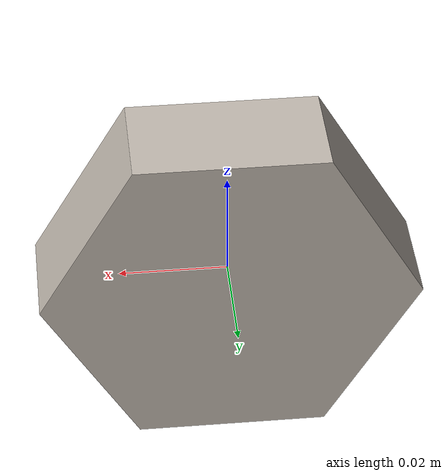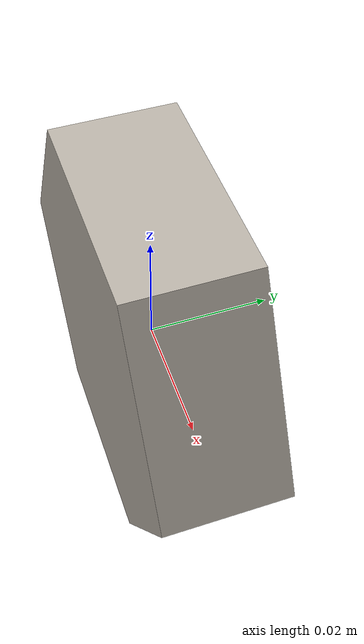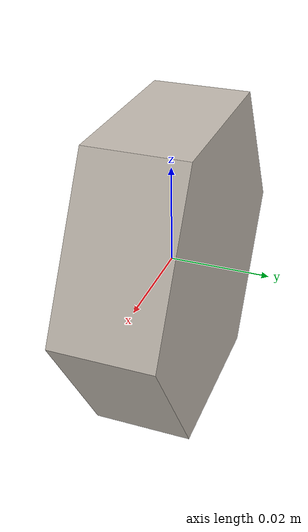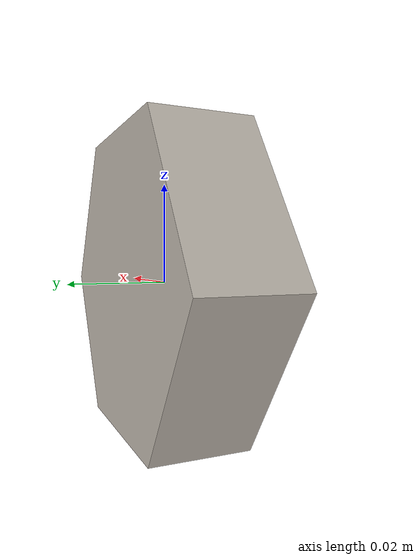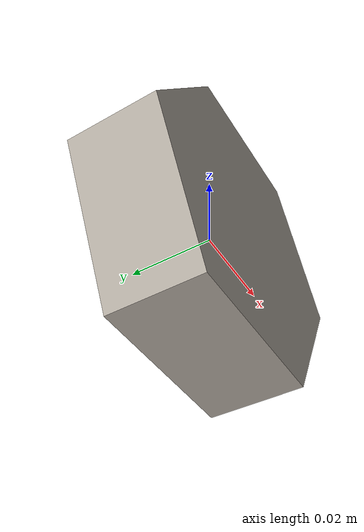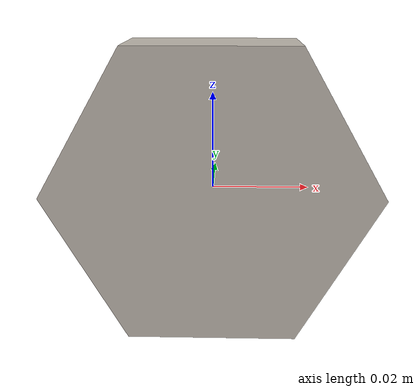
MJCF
<mujoco model="hexagon">
  <default>
    <default class="visual">
      <geom group="2" type="mesh" contype="0" conaffinity="0"/>
    </default>
    <default class="collision">
      <geom group="3" type="mesh"/>
    </default>
  </default>
  <asset>
    <texture type="2d" name="texture" file="texture.png"/>
    <material name="Material_0.002" texture="texture" specular="0.0" shininess="0.058037193"/>
    <mesh file="hexagon.obj"/>
  </asset>
  <worldbody>
    <body name="hexagon">
      <freejoint/>
      <geom material="Material_0.002" mesh="hexagon" class="visual"/>
      <geom mesh="hexagon" class="collision"/>
    </body>
  </worldbody>
</mujoco>
